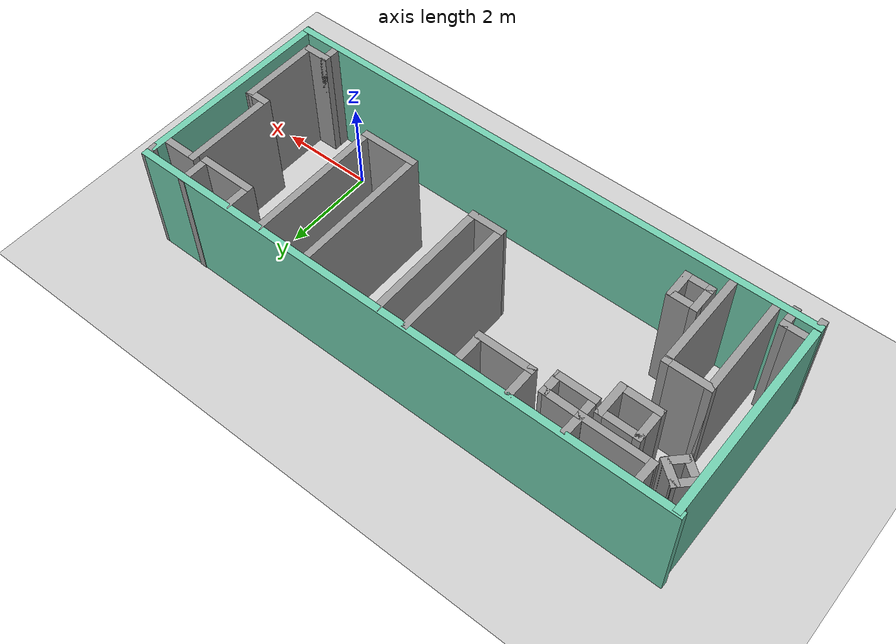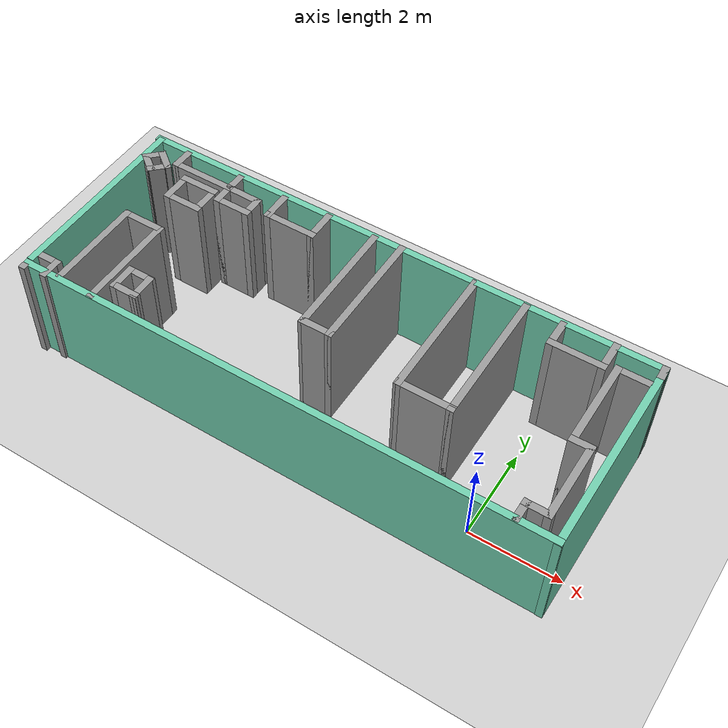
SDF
<sdf version="1.7">
 <world name="default">
  <light name="sun" type="directional">
   <pose>0 0 10 0 -0 0</pose>
   <diffuse>0.8 0.8 0.8 1</diffuse>
   <specular>0.2 0.2 0.2 1</specular>
   <attenuation>
    <range>1000</range>
    <constant>0.9</constant>
    <linear>0.01</linear>
    <quadratic>0.001</quadratic>
   </attenuation>
   <direction>-0.5 0.1 -0.9</direction>
   <spot><inner_angle>0</inner_angle><outer_angle>0</outer_angle><falloff>0</falloff></spot>
  </light>
  <model name="ground_plane">
   <static>1</static>
   <link name="link">
    <collision name="collision">
     <geometry><plane><normal>0 0 1</normal><size>100 100</size></plane></geometry>
     <surface><friction><ode><mu>100</mu><mu2>50</mu2></ode></friction></surface>
    </collision>
    <visual name="visual">
     <cast_shadows>0</cast_shadows>
     <geometry><plane><normal>0 0 1</normal><size>100 100</size></plane></geometry>
     <material>
      <script><uri>file://media/materials/scripts/gazebo.material</uri><name>Gazebo/Grey</name></script>
     </material>
    </visual>
   </link>
  </model>
  <gravity>0 0 -9.8</gravity>
  <magnetic_field>6e-06 2.3e-05 -4.2e-05</magnetic_field>
  <atmosphere type="adiabatic"/>
  <physics type="ode">
   <max_step_size>0.001</max_step_size>
   <real_time_factor>1</real_time_factor>
   <real_time_update_rate>1000</real_time_update_rate>
  </physics>
  <scene><ambient>0.4 0.4 0.4 1</ambient><background>0.7 0.7 0.7 1</background><shadows>1</shadows></scene>
  <audio><device>default</device></audio>
  <spherical_coordinates>
   <surface_model>EARTH_WGS84</surface_model>
   <latitude_deg>0</latitude_deg>
   <longitude_deg>0</longitude_deg>
   <elevation>0</elevation>
   <heading_deg>0</heading_deg>
  </spherical_coordinates>
  <model name="design-lab">
   <pose>-3.86922 1.33153 0 0 -0 0</pose>
   <link name="Wall_1">
    <collision name="Wall_1_Collision">
     <geometry><box><size>0.15 0.15 2.5</size></box></geometry>
     <pose>0 0 1.25 0 -0 0</pose>
    </collision>
    <visual name="Wall_1_Visual">
     <pose>0 0 1.25 0 -0 0</pose>
     <geometry><box><size>0.15 0.15 2.5</size></box></geometry>
     <material>
      <script><uri>file://media/materials/scripts/gazebo.material</uri><name>Gazebo/Grey</name></script>
      <ambient>1 1 1 1</ambient>
     </material>
     <meta><layer>0</layer></meta>
    </visual>
    <pose>-5.76702 2.14998 0 0 -0 0</pose>
   </link>
   <link name="Wall_10">
    <collision name="Wall_10_Collision">
     <geometry><box><size>0.15 0.15 2.5</size></box></geometry>
     <pose>0 0 1.25 0 -0 0</pose>
    </collision>
    <visual name="Wall_10_Visual">
     <pose>0 0 1.25 0 -0 0</pose>
     <geometry><box><size>0.15 0.15 2.5</size></box></geometry>
     <material>
      <script><uri>file://media/materials/scripts/gazebo.material</uri><name>Gazebo/Grey</name></script>
      <ambient>1 1 1 1</ambient>
     </material>
     <meta><layer>0</layer></meta>
    </visual>
    <pose>-5.74702 -2.20002 0 0 -0 0</pose>
   </link>
   <link name="Wall_12">
    <collision name="Wall_12_Collision">
     <geometry><box><size>4.23 0.15 2.5</size></box></geometry>
     <pose>0 0 1.25 0 -0 0</pose>
    </collision>
    <visual name="Wall_12_Visual">
     <pose>0 0 1.25 0 -0 0</pose>
     <geometry><box><size>4.23 0.15 2.5</size></box></geometry>
     <material>
      <script><uri>file://media/materials/scripts/gazebo.material</uri><name>Gazebo/Grey</name></script>
      <ambient>0.435294 0.796078 0.67451 1</ambient>
     </material>
     <meta><layer>0</layer></meta>
    </visual>
    <pose>-5.75702 0.109978 0 0 -0 -1.5708</pose>
   </link>
   <link name="Wall_16">
    <collision name="Wall_16_Collision">
     <geometry><box><size>11.68 0.15 2.5</size></box></geometry>
     <pose>0 0 1.25 0 -0 0</pose>
    </collision>
    <visual name="Wall_16_Visual">
     <pose>0 0 1.25 0 -0 0</pose>
     <geometry><box><size>11.68 0.15 2.5</size></box></geometry>
     <material>
      <script><uri>file://media/materials/scripts/gazebo.material</uri><name>Gazebo/Grey</name></script>
      <ambient>0.435294 0.796078 0.67451 1</ambient>
     </material>
     <meta><layer>0</layer></meta>
    </visual>
    <pose>0.017978 -2.09002 0 0 -0 0</pose>
   </link>
   <link name="Wall_17">
    <collision name="Wall_17_Collision">
     <geometry><box><size>4.26005 0.15 2.5</size></box></geometry>
     <pose>0 0 1.25 0 -0 0</pose>
    </collision>
    <visual name="Wall_17_Visual">
     <pose>0 0 1.25 0 -0 0</pose>
     <geometry><box><size>4.26005 0.15 2.5</size></box></geometry>
     <material>
      <script><uri>file://media/materials/scripts/gazebo.material</uri><name>Gazebo/Grey</name></script>
      <ambient>0.435294 0.796078 0.67451 1</ambient>
     </material>
     <meta><layer>0</layer></meta>
    </visual>
    <pose>5.79298 -0.045022 0 0 -0 1.56593</pose>
   </link>
   <link name="Wall_18">
    <collision name="Wall_18_Collision">
     <geometry><box><size>0.330278 0.15 2.5</size></box></geometry>
     <pose>0 0 1.25 0 -0 0</pose>
    </collision>
    <visual name="Wall_18_Visual">
     <pose>0 0 1.25 0 -0 0</pose>
     <geometry><box><size>0.330278 0.15 2.5</size></box></geometry>
     <material>
      <script><uri>file://media/materials/scripts/gazebo.material</uri><name>Gazebo/Grey</name></script>
      <ambient>1 1 1 1</ambient>
     </material>
     <meta><layer>0</layer></meta>
    </visual>
    <pose>5.79798 2.09998 0 0 -0 1.6263</pose>
   </link>
   <link name="Wall_19">
    <collision name="Wall_19_Collision">
     <geometry><box><size>11.75 0.15 2.5</size></box></geometry>
     <pose>0 0 1.25 0 -0 0</pose>
    </collision>
    <visual name="Wall_19_Visual">
     <pose>0 0 1.25 0 -0 0</pose>
     <geometry><box><size>11.75 0.15 2.5</size></box></geometry>
     <material>
      <script><uri>file://media/materials/scripts/gazebo.material</uri><name>Gazebo/Grey</name></script>
      <ambient>0.435294 0.796078 0.67451 1</ambient>
     </material>
     <meta><layer>0</layer></meta>
    </visual>
    <pose>-0.007022 2.18998 0 0 -0 3.14159</pose>
   </link>
   <link name="Wall_21">
    <collision name="Wall_21_Collision">
     <geometry><box><size>0.5 0.15 2.5</size></box></geometry>
     <pose>0 0 1.25 0 -0 0</pose>
    </collision>
    <visual name="Wall_21_Visual">
     <pose>0 0 1.25 0 -0 0</pose>
     <geometry><box><size>0.5 0.15 2.5</size></box></geometry>
     <material>
      <script><uri>file://media/materials/scripts/gazebo.material</uri><name>Gazebo/Grey</name></script>
      <ambient>1 1 1 1</ambient>
     </material>
     <meta><layer>0</layer></meta>
    </visual>
    <pose>-5.58328 1.70372 0 0 -0 0.785398</pose>
   </link>
   <link name="Wall_22">
    <collision name="Wall_22_Collision">
     <geometry><box><size>0.538521 0.15 2.5</size></box></geometry>
     <pose>0 0 1.25 0 -0 0</pose>
    </collision>
    <visual name="Wall_22_Visual">
     <pose>0 0 1.25 0 -0 0</pose>
     <geometry><box><size>0.538521 0.15 2.5</size></box></geometry>
     <material>
      <script><uri>file://media/materials/scripts/gazebo.material</uri><name>Gazebo/Grey</name></script>
      <ambient>1 1 1 1</ambient>
     </material>
     <meta><layer>0</layer></meta>
    </visual>
    <pose>-5.30579 1.70872 0 0 -0 -0.657651</pose>
   </link>
   <link name="Wall_23">
    <collision name="Wall_23_Collision">
     <geometry><box><size>0.5 0.15 2.5</size></box></geometry>
     <pose>0 0 1.25 0 -0 0</pose>
    </collision>
    <visual name="Wall_23_Visual">
     <pose>0 0 1.25 0 -0 0</pose>
     <geometry><box><size>0.5 0.15 2.5</size></box></geometry>
     <material>
      <script><uri>file://media/materials/scripts/gazebo.material</uri><name>Gazebo/Grey</name></script>
      <ambient>1 1 1 1</ambient>
     </material>
     <meta><layer>0</layer></meta>
    </visual>
    <pose>-5.27579 1.45623 0 0 -0 -2.35619</pose>
   </link>
   <link name="Wall_24">
    <collision name="Wall_24_Collision">
     <geometry><box><size>0.538521 0.15 2.5</size></box></geometry>
     <pose>0 0 1.25 0 -0 0</pose>
    </collision>
    <visual name="Wall_24_Visual">
     <pose>0 0 1.25 0 -0 0</pose>
     <geometry><box><size>0.538521 0.15 2.5</size></box></geometry>
     <material>
      <script><uri>file://media/materials/scripts/gazebo.material</uri><name>Gazebo/Grey</name></script>
      <ambient>1 1 1 1</ambient>
     </material>
     <meta><layer>0</layer></meta>
    </visual>
    <pose>-5.55328 1.46123 0 0 -0 2.48394</pose>
   </link>
   <link name="Wall_32">
    <collision name="Wall_32_Collision">
     <geometry><box><size>0.540128 0.15 2.5</size></box></geometry>
     <pose>0 0 1.25 0 -0 0</pose>
    </collision>
    <visual name="Wall_32_Visual">
     <pose>0 0 1.25 0 -0 0</pose>
     <geometry><box><size>0.540128 0.15 2.5</size></box></geometry>
     <material>
      <script><uri>file://media/materials/scripts/gazebo.material</uri><name>Gazebo/Grey</name></script>
      <ambient>1 1 1 1</ambient>
     </material>
     <meta><layer>0</layer></meta>
    </visual>
    <pose>-5.46202 -1.79002 0 0 -0 3.14159</pose>
   </link>
   <link name="Wall_34">
    <collision name="Wall_34_Collision">
     <geometry><box><size>0.5 0.15 2.5</size></box></geometry>
     <pose>0 0 1.25 0 -0 0</pose>
    </collision>
    <visual name="Wall_34_Visual">
     <pose>0 0 1.25 0 -0 0</pose>
     <geometry><box><size>0.5 0.15 2.5</size></box></geometry>
     <material>
      <script><uri>file://media/materials/scripts/gazebo.material</uri><name>Gazebo/Grey</name></script>
      <ambient>1 1 1 1</ambient>
     </material>
     <meta><layer>0</layer></meta>
    </visual>
    <pose>-5.26702 -1.96502 0 0 -0 -1.5708</pose>
   </link>
   <link name="Wall_36">
    <collision name="Wall_36_Collision">
     <geometry><box><size>0.510139 0.15 2.5</size></box></geometry>
     <pose>0 0 1.25 0 -0 0</pose>
    </collision>
    <visual name="Wall_36_Visual">
     <pose>0 0 1.25 0 -0 0</pose>
     <geometry><box><size>0.510139 0.15 2.5</size></box></geometry>
     <material>
      <script><uri>file://media/materials/scripts/gazebo.material</uri><name>Gazebo/Grey</name></script>
      <ambient>1 1 1 1</ambient>
     </material>
     <meta><layer>0</layer></meta>
    </visual>
    <pose>-5.01202 1.92998 0 0 -0 -1.59857</pose>
   </link>
   <link name="Wall_37">
    <collision name="Wall_37_Collision">
     <geometry><box><size>1.5 0.15 2.5</size></box></geometry>
     <pose>0 0 1.25 0 -0 0</pose>
    </collision>
    <visual name="Wall_37_Visual">
     <pose>0 0 1.25 0 -0 0</pose>
     <geometry><box><size>1.5 0.15 2.5</size></box></geometry>
     <material>
      <script><uri>file://media/materials/scripts/gazebo.material</uri><name>Gazebo/Grey</name></script>
      <ambient>1 1 1 1</ambient>
     </material>
     <meta><layer>0</layer></meta>
    </visual>
    <pose>-4.34202 1.74998 0 0 -0 0</pose>
   </link>
   <link name="Wall_38">
    <collision name="Wall_38_Collision">
     <geometry><box><size>0.510139 0.15 2.5</size></box></geometry>
     <pose>0 0 1.25 0 -0 0</pose>
    </collision>
    <visual name="Wall_38_Visual">
     <pose>0 0 1.25 0 -0 0</pose>
     <geometry><box><size>0.510139 0.15 2.5</size></box></geometry>
     <material>
      <script><uri>file://media/materials/scripts/gazebo.material</uri><name>Gazebo/Grey</name></script>
      <ambient>1 1 1 1</ambient>
     </material>
     <meta><layer>0</layer></meta>
    </visual>
    <pose>-3.66202 1.92998 0 0 -0 1.54303</pose>
   </link>
   <link name="Wall_40">
    <collision name="Wall_40_Collision">
     <geometry><box><size>2.18 0.15 2.5</size></box></geometry>
     <pose>0 0 1.25 0 -0 0</pose>
    </collision>
    <visual name="Wall_40_Visual">
     <pose>0 0 1.25 0 -0 0</pose>
     <geometry><box><size>2.18 0.15 2.5</size></box></geometry>
     <material>
      <script><uri>file://media/materials/scripts/gazebo.material</uri><name>Gazebo/Grey</name></script>
      <ambient>1 1 1 1</ambient>
     </material>
     <meta><layer>0</layer></meta>
    </visual>
    <pose>-4.97702 -0.985022 0 0 -0 1.5708</pose>
   </link>
   <link name="Wall_41">
    <collision name="Wall_41_Collision">
     <geometry><box><size>0.98006 0.15 2.5</size></box></geometry>
     <pose>0 0 1.25 0 -0 0</pose>
    </collision>
    <visual name="Wall_41_Visual">
     <pose>0 0 1.25 0 -0 0</pose>
     <geometry><box><size>0.98006 0.15 2.5</size></box></geometry>
     <material>
      <script><uri>file://media/materials/scripts/gazebo.material</uri><name>Gazebo/Grey</name></script>
      <ambient>1 1 1 1</ambient>
     </material>
     <meta><layer>0</layer></meta>
    </visual>
    <pose>-4.56202 0.029978 0 0 -0 0</pose>
   </link>
   <link name="Wall_42">
    <collision name="Wall_42_Collision">
     <geometry><box><size>2.25 0.15 2.5</size></box></geometry>
     <pose>0 0 1.25 0 -0 0</pose>
    </collision>
    <visual name="Wall_42_Visual">
     <pose>0 0 1.25 0 -0 0</pose>
     <geometry><box><size>2.25 0.15 2.5</size></box></geometry>
     <material>
      <script><uri>file://media/materials/scripts/gazebo.material</uri><name>Gazebo/Grey</name></script>
      <ambient>1 1 1 1</ambient>
     </material>
     <meta><layer>0</layer></meta>
    </visual>
    <pose>-4.14702 -1.02002 0 0 -0 -1.5708</pose>
   </link>
   <link name="Wall_44">
    <collision name="Wall_44_Collision">
     <geometry><box><size>0.630104 0.15 2.5</size></box></geometry>
     <pose>0 0 1.25 0 -0 0</pose>
    </collision>
    <visual name="Wall_44_Visual">
     <pose>0 0 1.25 0 -0 0</pose>
     <geometry><box><size>0.630104 0.15 2.5</size></box></geometry>
     <material>
      <script><uri>file://media/materials/scripts/gazebo.material</uri><name>Gazebo/Grey</name></script>
      <ambient>1 1 1 1</ambient>
     </material>
     <meta><layer>0</layer></meta>
    </visual>
    <pose>-3.93702 -1.39002 0 0 -0 -1.5708</pose>
   </link>
   <link name="Wall_45">
    <collision name="Wall_45_Collision">
     <geometry><box><size>0.63 0.15 2.5</size></box></geometry>
     <pose>0 0 1.25 0 -0 0</pose>
    </collision>
    <visual name="Wall_45_Visual">
     <pose>0 0 1.25 0 -0 0</pose>
     <geometry><box><size>0.63 0.15 2.5</size></box></geometry>
     <material>
      <script><uri>file://media/materials/scripts/gazebo.material</uri><name>Gazebo/Grey</name></script>
      <ambient>1 1 1 1</ambient>
     </material>
     <meta><layer>0</layer></meta>
    </visual>
    <pose>-3.69702 -1.63002 0 0 -0 0</pose>
   </link>
   <link name="Wall_46">
    <collision name="Wall_46_Collision">
     <geometry><box><size>0.620106 0.15 2.5</size></box></geometry>
     <pose>0 0 1.25 0 -0 0</pose>
    </collision>
    <visual name="Wall_46_Visual">
     <pose>0 0 1.25 0 -0 0</pose>
     <geometry><box><size>0.620106 0.15 2.5</size></box></geometry>
     <material>
      <script><uri>file://media/materials/scripts/gazebo.material</uri><name>Gazebo/Grey</name></script>
      <ambient>1 1 1 1</ambient>
     </material>
     <meta><layer>0</layer></meta>
    </visual>
    <pose>-3.46202 -1.39502 0 0 -0 1.59207</pose>
   </link>
   <link name="Wall_47">
    <collision name="Wall_47_Collision">
     <geometry><box><size>0.620106 0.15 2.5</size></box></geometry>
     <pose>0 0 1.25 0 -0 0</pose>
    </collision>
    <visual name="Wall_47_Visual">
     <pose>0 0 1.25 0 -0 0</pose>
     <geometry><box><size>0.620106 0.15 2.5</size></box></geometry>
     <material>
      <script><uri>file://media/materials/scripts/gazebo.material</uri><name>Gazebo/Grey</name></script>
      <ambient>1 1 1 1</ambient>
     </material>
     <meta><layer>0</layer></meta>
    </visual>
    <pose>-3.70202 -1.15002 0 0 -0 3.14159</pose>
   </link>
   <link name="Wall_49">
    <collision name="Wall_49_Collision">
     <geometry><box><size>0.730086 0.15 2.5</size></box></geometry>
     <pose>0 0 1.25 0 -0 0</pose>
    </collision>
    <visual name="Wall_49_Visual">
     <pose>0 0 1.25 0 -0 0</pose>
     <geometry><box><size>0.730086 0.15 2.5</size></box></geometry>
     <material>
      <script><uri>file://media/materials/scripts/gazebo.material</uri><name>Gazebo/Grey</name></script>
      <ambient>1 1 1 1</ambient>
     </material>
     <meta><layer>0</layer></meta>
    </visual>
    <pose>-4.59702 1.19998 0 0 -0 -1.5708</pose>
   </link>
   <link name="Wall_50">
    <collision name="Wall_50_Collision">
     <geometry><box><size>0.880616 0.15 2.5</size></box></geometry>
     <pose>0 0 1.25 0 -0 0</pose>
    </collision>
    <visual name="Wall_50_Visual">
     <pose>0 0 1.25 0 -0 0</pose>
     <geometry><box><size>0.880616 0.15 2.5</size></box></geometry>
     <material>
      <script><uri>file://media/materials/scripts/gazebo.material</uri><name>Gazebo/Grey</name></script>
      <ambient>1 1 1 1</ambient>
     </material>
     <meta><layer>0</layer></meta>
    </visual>
    <pose>-4.23202 0.909978 0 0 -0 0</pose>
   </link>
   <link name="Wall_51">
    <collision name="Wall_51_Collision">
     <geometry><box><size>0.73 0.15 2.5</size></box></geometry>
     <pose>0 0 1.25 0 -0 0</pose>
    </collision>
    <visual name="Wall_51_Visual">
     <pose>0 0 1.25 0 -0 0</pose>
     <geometry><box><size>0.73 0.15 2.5</size></box></geometry>
     <material>
      <script><uri>file://media/materials/scripts/gazebo.material</uri><name>Gazebo/Grey</name></script>
      <ambient>1 1 1 1</ambient>
     </material>
     <meta><layer>0</layer></meta>
    </visual>
    <pose>-3.86702 1.19998 0 0 -0 1.5708</pose>
   </link>
   <link name="Wall_52">
    <collision name="Wall_52_Collision">
     <geometry><box><size>0.88 0.15 2.5</size></box></geometry>
     <pose>0 0 1.25 0 -0 0</pose>
    </collision>
    <visual name="Wall_52_Visual">
     <pose>0 0 1.25 0 -0 0</pose>
     <geometry><box><size>0.88 0.15 2.5</size></box></geometry>
     <material>
      <script><uri>file://media/materials/scripts/gazebo.material</uri><name>Gazebo/Grey</name></script>
      <ambient>1 1 1 1</ambient>
     </material>
     <meta><layer>0</layer></meta>
    </visual>
    <pose>-4.23202 1.48998 0 0 -0 3.14159</pose>
   </link>
   <link name="Wall_54">
    <collision name="Wall_54_Collision">
     <geometry><box><size>0.54 0.15 2.5</size></box></geometry>
     <pose>0 0 1.25 0 -0 0</pose>
    </collision>
    <visual name="Wall_54_Visual">
     <pose>0 0 1.25 0 -0 0</pose>
     <geometry><box><size>0.54 0.15 2.5</size></box></geometry>
     <material>
      <script><uri>file://media/materials/scripts/gazebo.material</uri><name>Gazebo/Grey</name></script>
      <ambient>1 1 1 1</ambient>
     </material>
     <meta><layer>0</layer></meta>
    </visual>
    <pose>-3.66702 1.55498 0 0 -0 -1.5708</pose>
   </link>
   <link name="Wall_55">
    <collision name="Wall_55_Collision">
     <geometry><box><size>0.86007 0.15 2.5</size></box></geometry>
     <pose>0 0 1.25 0 -0 0</pose>
    </collision>
    <visual name="Wall_55_Visual">
     <pose>0 0 1.25 0 -0 0</pose>
     <geometry><box><size>0.86007 0.15 2.5</size></box></geometry>
     <material>
      <script><uri>file://media/materials/scripts/gazebo.material</uri><name>Gazebo/Grey</name></script>
      <ambient>1 1 1 1</ambient>
     </material>
     <meta><layer>0</layer></meta>
    </visual>
    <pose>-3.31202 1.35998 0 0 -0 0</pose>
   </link>
   <link name="Wall_56">
    <collision name="Wall_56_Collision">
     <geometry><box><size>0.530132 0.15 2.5</size></box></geometry>
     <pose>0 0 1.25 0 -0 0</pose>
    </collision>
    <visual name="Wall_56_Visual">
     <pose>0 0 1.25 0 -0 0</pose>
     <geometry><box><size>0.530132 0.15 2.5</size></box></geometry>
     <material>
      <script><uri>file://media/materials/scripts/gazebo.material</uri><name>Gazebo/Grey</name></script>
      <ambient>1 1 1 1</ambient>
     </material>
     <meta><layer>0</layer></meta>
    </visual>
    <pose>-2.95702 1.54998 0 0 -0 1.5708</pose>
   </link>
   <link name="Wall_57">
    <collision name="Wall_57_Collision">
     <geometry><box><size>0.860282 0.15 2.5</size></box></geometry>
     <pose>0 0 1.25 0 -0 0</pose>
    </collision>
    <visual name="Wall_57_Visual">
     <pose>0 0 1.25 0 -0 0</pose>
     <geometry><box><size>0.860282 0.15 2.5</size></box></geometry>
     <material>
      <script><uri>file://media/materials/scripts/gazebo.material</uri><name>Gazebo/Grey</name></script>
      <ambient>1 1 1 1</ambient>
     </material>
     <meta><layer>0</layer></meta>
    </visual>
    <pose>-3.31202 1.74498 0 0 -0 3.12751</pose>
   </link>
   <link name="Wall_59">
    <collision name="Wall_59_Collision">
     <geometry><box><size>0.700364 0.15 2.5</size></box></geometry>
     <pose>0 0 1.25 0 -0 0</pose>
    </collision>
    <visual name="Wall_59_Visual">
     <pose>0 0 1.25 0 -0 0</pose>
     <geometry><box><size>0.700364 0.15 2.5</size></box></geometry>
     <material>
      <script><uri>file://media/materials/scripts/gazebo.material</uri><name>Gazebo/Grey</name></script>
      <ambient>1 1 1 1</ambient>
     </material>
     <meta><layer>0</layer></meta>
    </visual>
    <pose>-2.54702 1.82498 0 0 -0 -1.5708</pose>
   </link>
   <link name="Wall_60">
    <collision name="Wall_60_Collision">
     <geometry><box><size>1.2 0.15 2.5</size></box></geometry>
     <pose>0 0 1.25 0 -0 0</pose>
    </collision>
    <visual name="Wall_60_Visual">
     <pose>0 0 1.25 0 -0 0</pose>
     <geometry><box><size>1.2 0.15 2.5</size></box></geometry>
     <material>
      <script><uri>file://media/materials/scripts/gazebo.material</uri><name>Gazebo/Grey</name></script>
      <ambient>1 1 1 1</ambient>
     </material>
     <meta><layer>0</layer></meta>
    </visual>
    <pose>-2.02202 1.54998 0 0 -0 0</pose>
   </link>
   <link name="Wall_61">
    <collision name="Wall_61_Collision">
     <geometry><box><size>0.75 0.15 2.5</size></box></geometry>
     <pose>0 0 1.25 0 -0 0</pose>
    </collision>
    <visual name="Wall_61_Visual">
     <pose>0 0 1.25 0 -0 0</pose>
     <geometry><box><size>0.75 0.15 2.5</size></box></geometry>
     <material>
      <script><uri>file://media/materials/scripts/gazebo.material</uri><name>Gazebo/Grey</name></script>
      <ambient>1 1 1 1</ambient>
     </material>
     <meta><layer>0</layer></meta>
    </visual>
    <pose>-1.49702 1.84998 0 0 -0 1.5708</pose>
   </link>
   <link name="Wall_63">
    <collision name="Wall_63_Collision">
     <geometry><box><size>2.70002 0.15 2.5</size></box></geometry>
     <pose>0 0 1.25 0 -0 0</pose>
    </collision>
    <visual name="Wall_63_Visual">
     <pose>0 0 1.25 0 -0 0</pose>
     <geometry><box><size>2.70002 0.15 2.5</size></box></geometry>
     <material>
      <script><uri>file://media/materials/scripts/gazebo.material</uri><name>Gazebo/Grey</name></script>
      <ambient>1 1 1 1</ambient>
     </material>
     <meta><layer>0</layer></meta>
    </visual>
    <pose>-0.402022 0.864978 0 0 -0 -1.56688</pose>
   </link>
   <link name="Wall_64">
    <collision name="Wall_64_Collision">
     <geometry><box><size>0.75 0.15 2.5</size></box></geometry>
     <pose>0 0 1.25 0 -0 0</pose>
    </collision>
    <visual name="Wall_64_Visual">
     <pose>0 0 1.25 0 -0 0</pose>
     <geometry><box><size>0.75 0.15 2.5</size></box></geometry>
     <material>
      <script><uri>file://media/materials/scripts/gazebo.material</uri><name>Gazebo/Grey</name></script>
      <ambient>1 1 1 1</ambient>
     </material>
     <meta><layer>0</layer></meta>
    </visual>
    <pose>-0.097022 -0.410022 0 0 -0 0</pose>
   </link>
   <link name="Wall_65">
    <collision name="Wall_65_Collision">
     <geometry><box><size>2.75 0.15 2.5</size></box></geometry>
     <pose>0 0 1.25 0 -0 0</pose>
    </collision>
    <visual name="Wall_65_Visual">
     <pose>0 0 1.25 0 -0 0</pose>
     <geometry><box><size>2.75 0.15 2.5</size></box></geometry>
     <material>
      <script><uri>file://media/materials/scripts/gazebo.material</uri><name>Gazebo/Grey</name></script>
      <ambient>1 1 1 1</ambient>
     </material>
     <meta><layer>0</layer></meta>
    </visual>
    <pose>0.202978 0.889978 0 0 -0 1.5708</pose>
   </link>
   <link name="Wall_67">
    <collision name="Wall_67_Collision">
     <geometry><box><size>3 0.15 2.5</size></box></geometry>
     <pose>0 0 1.25 0 -0 0</pose>
    </collision>
    <visual name="Wall_67_Visual">
     <pose>0 0 1.25 0 -0 0</pose>
     <geometry><box><size>3 0.15 2.5</size></box></geometry>
     <material>
      <script><uri>file://media/materials/scripts/gazebo.material</uri><name>Gazebo/Grey</name></script>
      <ambient>1 1 1 1</ambient>
     </material>
     <meta><layer>0</layer></meta>
    </visual>
    <pose>1.86298 0.734978 0 0 -0 -1.5708</pose>
   </link>
   <link name="Wall_68">
    <collision name="Wall_68_Collision">
     <geometry><box><size>1.25 0.15 2.5</size></box></geometry>
     <pose>0 0 1.25 0 -0 0</pose>
    </collision>
    <visual name="Wall_68_Visual">
     <pose>0 0 1.25 0 -0 0</pose>
     <geometry><box><size>1.25 0.15 2.5</size></box></geometry>
     <material>
      <script><uri>file://media/materials/scripts/gazebo.material</uri><name>Gazebo/Grey</name></script>
      <ambient>1 1 1 1</ambient>
     </material>
     <meta><layer>0</layer></meta>
    </visual>
    <pose>2.41298 -0.690022 0 0 -0 0</pose>
   </link>
   <link name="Wall_69">
    <collision name="Wall_69_Collision">
     <geometry><box><size>3 0.15 2.5</size></box></geometry>
     <pose>0 0 1.25 0 -0 0</pose>
    </collision>
    <visual name="Wall_69_Visual">
     <pose>0 0 1.25 0 -0 0</pose>
     <geometry><box><size>3 0.15 2.5</size></box></geometry>
     <material>
      <script><uri>file://media/materials/scripts/gazebo.material</uri><name>Gazebo/Grey</name></script>
      <ambient>1 1 1 1</ambient>
     </material>
     <meta><layer>0</layer></meta>
    </visual>
    <pose>2.96298 0.734978 0 0 -0 1.5708</pose>
   </link>
   <link name="Wall_71">
    <collision name="Wall_71_Collision">
     <geometry><box><size>0.650899 0.15 2.5</size></box></geometry>
     <pose>0 0 1.25 0 -0 0</pose>
    </collision>
    <visual name="Wall_71_Visual">
     <pose>0 0 1.25 0 -0 0</pose>
     <geometry><box><size>0.650899 0.15 2.5</size></box></geometry>
     <material>
      <script><uri>file://media/materials/scripts/gazebo.material</uri><name>Gazebo/Grey</name></script>
      <ambient>1 1 1 1</ambient>
     </material>
     <meta><layer>0</layer></meta>
    </visual>
    <pose>3.75298 1.88998 0 0 -0 -1.5708</pose>
   </link>
   <link name="Wall_72">
    <collision name="Wall_72_Collision">
     <geometry><box><size>1.21 0.15 2.5</size></box></geometry>
     <pose>0 0 1.25 0 -0 0</pose>
    </collision>
    <visual name="Wall_72_Visual">
     <pose>0 0 1.25 0 -0 0</pose>
     <geometry><box><size>1.21 0.15 2.5</size></box></geometry>
     <material>
      <script><uri>file://media/materials/scripts/gazebo.material</uri><name>Gazebo/Grey</name></script>
      <ambient>1 1 1 1</ambient>
     </material>
     <meta><layer>0</layer></meta>
    </visual>
    <pose>4.28298 1.63998 0 0 -0 0</pose>
   </link>
   <link name="Wall_73">
    <collision name="Wall_73_Collision">
     <geometry><box><size>0.710089 0.15 2.5</size></box></geometry>
     <pose>0 0 1.25 0 -0 0</pose>
    </collision>
    <visual name="Wall_73_Visual">
     <pose>0 0 1.25 0 -0 0</pose>
     <geometry><box><size>0.710089 0.15 2.5</size></box></geometry>
     <material>
      <script><uri>file://media/materials/scripts/gazebo.material</uri><name>Gazebo/Grey</name></script>
      <ambient>1 1 1 1</ambient>
     </material>
     <meta><layer>0</layer></meta>
    </visual>
    <pose>4.81298 1.91998 0 0 -0 1.5708</pose>
   </link>
   <link name="Wall_76">
    <collision name="Wall_76_Collision">
     <geometry><box><size>0.75 0.15 2.5</size></box></geometry>
     <pose>0 0 1.25 0 -0 0</pose>
    </collision>
    <visual name="Wall_76_Visual">
     <pose>0 0 1.25 0 -0 0</pose>
     <geometry><box><size>0.75 0.15 2.5</size></box></geometry>
     <material>
      <script><uri>file://media/materials/scripts/gazebo.material</uri><name>Gazebo/Grey</name></script>
      <ambient>1 1 1 1</ambient>
     </material>
     <meta><layer>0</layer></meta>
    </visual>
    <pose>5.36298 1.72998 0 0 -0 0</pose>
   </link>
   <link name="Wall_78">
    <collision name="Wall_78_Collision">
     <geometry><box><size>2 0.15 2.5</size></box></geometry>
     <pose>0 0 1.25 0 -0 0</pose>
    </collision>
    <visual name="Wall_78_Visual">
     <pose>0 0 1.25 0 -0 0</pose>
     <geometry><box><size>2 0.15 2.5</size></box></geometry>
     <material>
      <script><uri>file://media/materials/scripts/gazebo.material</uri><name>Gazebo/Grey</name></script>
      <ambient>1 1 1 1</ambient>
     </material>
     <meta><layer>0</layer></meta>
    </visual>
    <pose>5.06298 0.804978 0 0 -0 -1.5708</pose>
   </link>
   <link name="Wall_79">
    <collision name="Wall_79_Collision">
     <geometry><box><size>0.5 0.15 2.5</size></box></geometry>
     <pose>0 0 1.25 0 -0 0</pose>
    </collision>
    <visual name="Wall_79_Visual">
     <pose>0 0 1.25 0 -0 0</pose>
     <geometry><box><size>0.5 0.15 2.5</size></box></geometry>
     <material>
      <script><uri>file://media/materials/scripts/gazebo.material</uri><name>Gazebo/Grey</name></script>
      <ambient>1 1 1 1</ambient>
     </material>
     <meta><layer>0</layer></meta>
    </visual>
    <pose>5.23798 -0.120022 0 0 -0 0</pose>
   </link>
   <link name="Wall_81">
    <collision name="Wall_81_Collision">
     <geometry><box><size>1.75 0.15 2.5</size></box></geometry>
     <pose>0 0 1.25 0 -0 0</pose>
    </collision>
    <visual name="Wall_81_Visual">
     <pose>0 0 1.25 0 -0 0</pose>
     <geometry><box><size>1.75 0.15 2.5</size></box></geometry>
     <material>
      <script><uri>file://media/materials/scripts/gazebo.material</uri><name>Gazebo/Grey</name></script>
      <ambient>1 1 1 1</ambient>
     </material>
     <meta><layer>0</layer></meta>
    </visual>
    <pose>5.41298 -0.920022 0 0 -0 -1.5708</pose>
   </link>
   <link name="Wall_82">
    <collision name="Wall_82_Collision">
     <geometry><box><size>0.59 0.15 2.5</size></box></geometry>
     <pose>0 0 1.25 0 -0 0</pose>
    </collision>
    <visual name="Wall_82_Visual">
     <pose>0 0 1.25 0 -0 0</pose>
     <geometry><box><size>0.59 0.15 2.5</size></box></geometry>
     <material>
      <script><uri>file://media/materials/scripts/gazebo.material</uri><name>Gazebo/Grey</name></script>
      <ambient>1 1 1 1</ambient>
     </material>
     <meta><layer>0</layer></meta>
    </visual>
    <pose>5.19298 -1.72002 0 0 -0 3.14159</pose>
   </link>
   <link name="Wall_83">
    <collision name="Wall_83_Collision">
     <geometry><box><size>0.5 0.15 2.5</size></box></geometry>
     <pose>0 0 1.25 0 -0 0</pose>
    </collision>
    <visual name="Wall_83_Visual">
     <pose>0 0 1.25 0 -0 0</pose>
     <geometry><box><size>0.5 0.15 2.5</size></box></geometry>
     <material>
      <script><uri>file://media/materials/scripts/gazebo.material</uri><name>Gazebo/Grey</name></script>
      <ambient>1 1 1 1</ambient>
     </material>
     <meta><layer>0</layer></meta>
    </visual>
    <pose>4.97298 -1.89502 0 0 -0 -1.5708</pose>
   </link>
   <static>1</static>
  </model>
 </world>
</sdf>
